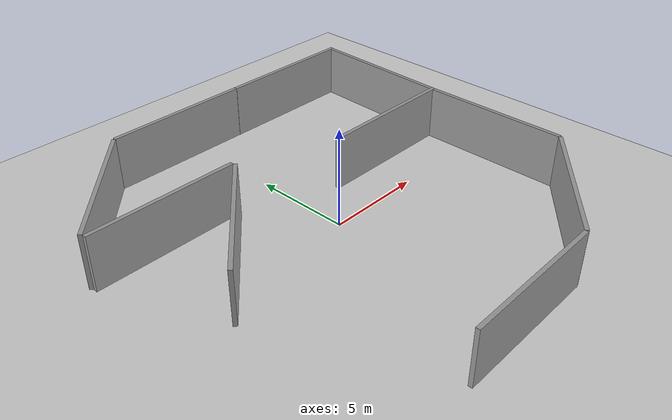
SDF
<sdf version="1.7">
 <world name="default">
  <light name="sun" type="directional">
   <pose>0 0 10 0 -0 0</pose>
   <diffuse>0.8 0.8 0.8 1</diffuse>
   <specular>0.2 0.2 0.2 1</specular>
   <attenuation>
    <range>1000</range>
    <constant>0.9</constant>
    <linear>0.01</linear>
    <quadratic>0.001</quadratic>
   </attenuation>
   <direction>-0.5 0.1 -0.9</direction>
   <spot><inner_angle>0</inner_angle><outer_angle>0</outer_angle><falloff>0</falloff></spot>
  </light>
  <model name="ground_plane">
   <static>1</static>
   <link name="link">
    <collision name="collision">
     <geometry><plane><normal>0 0 1</normal><size>100 100</size></plane></geometry>
     <surface><friction><ode><mu>100</mu><mu2>50</mu2></ode></friction></surface>
    </collision>
    <visual name="visual">
     <cast_shadows>0</cast_shadows>
     <geometry><plane><normal>0 0 1</normal><size>100 100</size></plane></geometry>
     <material>
      <script><uri>file://media/materials/scripts/gazebo.material</uri><name>Gazebo/Grey</name></script>
     </material>
    </visual>
   </link>
  </model>
  <gravity>0 0 -9.8</gravity>
  <magnetic_field>6e-06 2.3e-05 -4.2e-05</magnetic_field>
  <atmosphere type="adiabatic"/>
  <physics type="ode">
   <max_step_size>0.001</max_step_size>
   <real_time_factor>1</real_time_factor>
   <real_time_update_rate>1000</real_time_update_rate>
  </physics>
  <scene><ambient>0.4 0.4 0.4 1</ambient><background>0.7 0.7 0.7 1</background><shadows>1</shadows></scene>
  <spherical_coordinates>
   <surface_model>EARTH_WGS84</surface_model>
   <latitude_deg>0</latitude_deg>
   <longitude_deg>0</longitude_deg>
   <elevation>0</elevation>
   <heading_deg>0</heading_deg>
  </spherical_coordinates>
  <model name="grey_wall">
   <static>1</static>
   <link name="link">
    <pose>0 0 1.4 0 -0 0</pose>
    <collision name="collision"><geometry><box><size>7.5 0.2 2.8</size></box></geometry></collision>
    <visual name="visual">
     <cast_shadows>0</cast_shadows>
     <geometry><box><size>7.5 0.2 2.8</size></box></geometry>
     <material>
      <script>
       <uri>model://grey_wall/materials/scripts</uri>
       <uri>model://grey_wall/materials/textures</uri>
       <name>vrc/grey_wall</name>
      </script>
     </material>
    </visual>
   </link>
   <pose>6.19309 9.87758 0 0 -0 0</pose>
  </model>
  <model name="grey_wall_0">
   <static>1</static>
   <link name="link">
    <pose>0 0 1.4 0 -0 0</pose>
    <collision name="collision"><geometry><box><size>7.5 0.2 2.8</size></box></geometry></collision>
    <visual name="visual">
     <cast_shadows>0</cast_shadows>
     <geometry><box><size>7.5 0.2 2.8</size></box></geometry>
     <material>
      <script>
       <uri>model://grey_wall/materials/scripts</uri>
       <uri>model://grey_wall/materials/textures</uri>
       <name>vrc/grey_wall</name>
      </script>
     </material>
    </visual>
   </link>
   <pose>9.73211 6.05581 0 0 0 -1.59717</pose>
  </model>
  <model name="grey_wall_1">
   <static>1</static>
   <link name="link">
    <pose>0 0 1.4 0 -0 0</pose>
    <collision name="collision"><geometry><box><size>7.5 0.2 2.8</size></box></geometry></collision>
    <visual name="visual">
     <cast_shadows>0</cast_shadows>
     <geometry><box><size>7.5 0.2 2.8</size></box></geometry>
     <material>
      <script>
       <uri>model://grey_wall/materials/scripts</uri>
       <uri>model://grey_wall/materials/textures</uri>
       <name>vrc/grey_wall</name>
      </script>
     </material>
    </visual>
   </link>
   <pose>-7.67934 7.07601 0 0 -0 0.823505</pose>
  </model>
  <model name="grey_wall_2">
   <static>1</static>
   <link name="link">
    <pose>0 0 1.4 0 -0 0</pose>
    <collision name="collision"><geometry><box><size>7.5 0.2 2.8</size></box></geometry></collision>
    <visual name="visual">
     <cast_shadows>0</cast_shadows>
     <geometry><box><size>7.5 0.2 2.8</size></box></geometry>
     <material>
      <script>
       <uri>model://grey_wall/materials/scripts</uri>
       <uri>model://grey_wall/materials/textures</uri>
       <name>vrc/grey_wall</name>
      </script>
     </material>
    </visual>
   </link>
   <pose>-1.31022 9.88017 0 0 -0 0</pose>
  </model>
  <model name="grey_wall_3">
   <static>1</static>
   <link name="link">
    <pose>0 0 1.4 0 -0 0</pose>
    <collision name="collision"><geometry><box><size>7.5 0.2 2.8</size></box></geometry></collision>
    <visual name="visual">
     <cast_shadows>0</cast_shadows>
     <geometry><box><size>7.5 0.2 2.8</size></box></geometry>
     <material>
      <script>
       <uri>model://grey_wall/materials/scripts</uri>
       <uri>model://grey_wall/materials/textures</uri>
       <name>vrc/grey_wall</name>
      </script>
     </material>
    </visual>
   </link>
   <pose>5.98167 2.21243 0 0 -0 0</pose>
  </model>
  <model name="grey_wall_4">
   <static>1</static>
   <link name="link">
    <pose>0 0 1.4 0 -0 0</pose>
    <collision name="collision"><geometry><box><size>7.5 0.2 2.8</size></box></geometry></collision>
    <visual name="visual">
     <cast_shadows>0</cast_shadows>
     <geometry><box><size>7.5 0.2 2.8</size></box></geometry>
     <material>
      <script>
       <uri>model://grey_wall/materials/scripts</uri>
       <uri>model://grey_wall/materials/textures</uri>
       <name>vrc/grey_wall</name>
      </script>
     </material>
    </visual>
   </link>
   <pose>9.64992 -1.62945 0 0 0 -1.56672</pose>
  </model>
  <model name="grey_wall_5">
   <static>1</static>
   <link name="link">
    <pose>0 0 1.4 0 -0 0</pose>
    <collision name="collision"><geometry><box><size>7.5 0.2 2.8</size></box></geometry></collision>
    <visual name="visual">
     <cast_shadows>0</cast_shadows>
     <geometry><box><size>7.5 0.2 2.8</size></box></geometry>
     <material>
      <script>
       <uri>model://grey_wall/materials/scripts</uri>
       <uri>model://grey_wall/materials/textures</uri>
       <name>vrc/grey_wall</name>
      </script>
     </material>
    </visual>
   </link>
   <pose>-6.41629 4.13211 0 0 -0 0</pose>
  </model>
  <model name="grey_wall_6">
   <static>1</static>
   <link name="link">
    <pose>0 0 1.4 0 -0 0</pose>
    <collision name="collision"><geometry><box><size>7.5 0.2 2.8</size></box></geometry></collision>
    <visual name="visual">
     <cast_shadows>0</cast_shadows>
     <geometry><box><size>7.5 0.2 2.8</size></box></geometry>
     <material>
      <script>
       <uri>model://grey_wall/materials/scripts</uri>
       <uri>model://grey_wall/materials/textures</uri>
       <name>vrc/grey_wall</name>
      </script>
     </material>
    </visual>
   </link>
   <pose>-5.09027 1.18442 0 0 -0 0.840786</pose>
  </model>
  <model name="grey_wall_7">
   <static>1</static>
   <link name="link">
    <pose>0 0 1.4 0 -0 0</pose>
    <collision name="collision"><geometry><box><size>7.5 0.2 2.8</size></box></geometry></collision>
    <visual name="visual">
     <cast_shadows>0</cast_shadows>
     <geometry><box><size>7.5 0.2 2.8</size></box></geometry>
     <material>
      <script>
       <uri>model://grey_wall/materials/scripts</uri>
       <uri>model://grey_wall/materials/textures</uri>
       <name>vrc/grey_wall</name>
      </script>
     </material>
    </visual>
   </link>
   <pose>-0.152754 -9.97049 0 0 -0 0</pose>
  </model>
  <model name="grey_wall_8">
   <static>1</static>
   <link name="link">
    <pose>0 0 1.4 0 -0 0</pose>
    <collision name="collision"><geometry><box><size>7.5 0.2 2.8</size></box></geometry></collision>
    <visual name="visual">
     <cast_shadows>0</cast_shadows>
     <geometry><box><size>7.5 0.2 2.8</size></box></geometry>
     <material>
      <script>
       <uri>model://grey_wall/materials/scripts</uri>
       <uri>model://grey_wall/materials/textures</uri>
       <name>vrc/grey_wall</name>
      </script>
     </material>
    </visual>
   </link>
   <pose>6.64114 -7.68992 0 0 -0 0.648419</pose>
  </model>
 </world>
</sdf>
